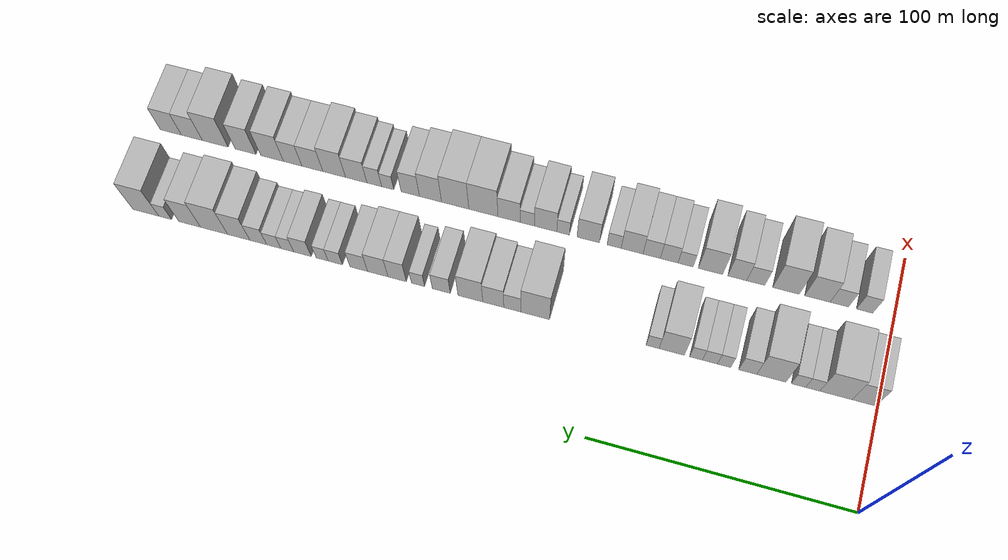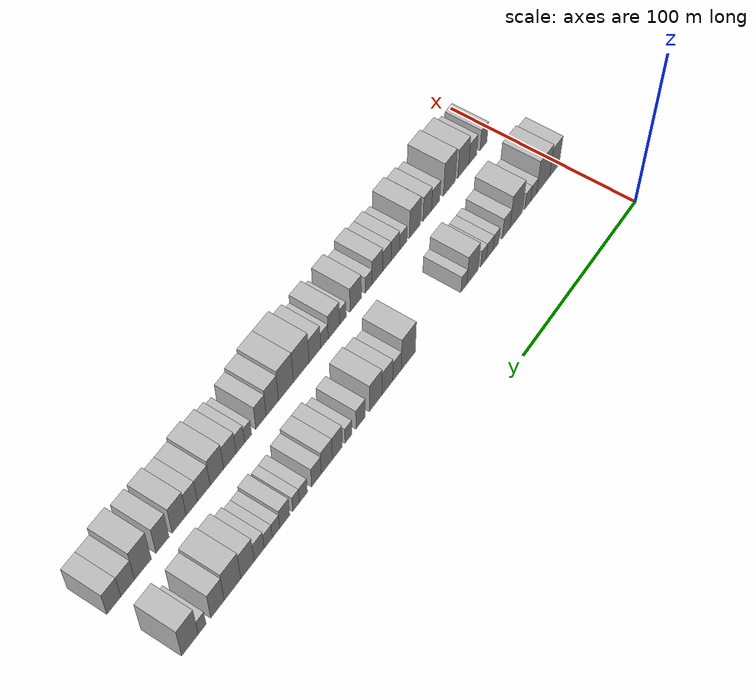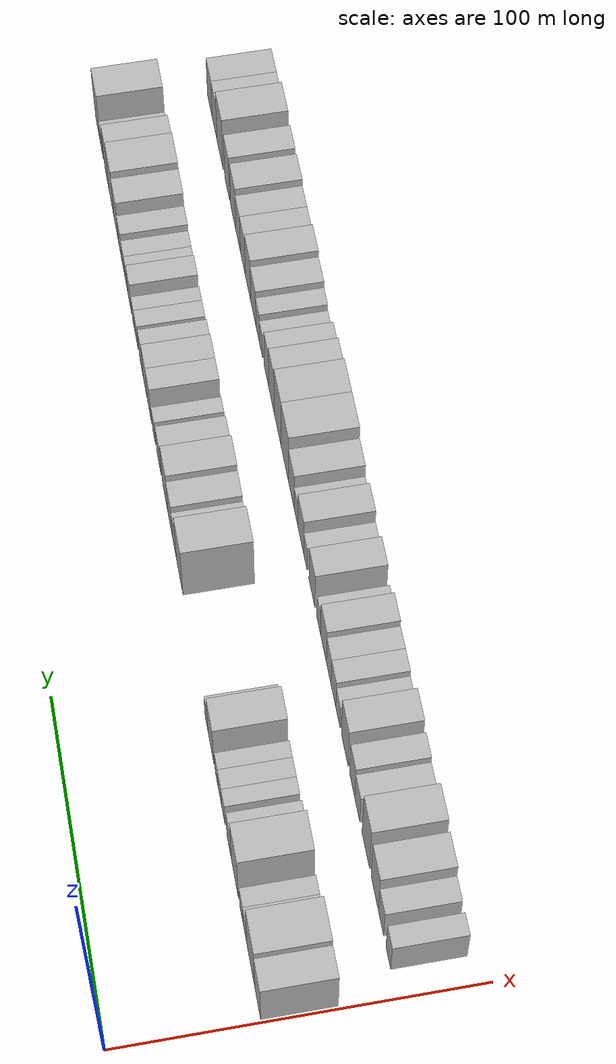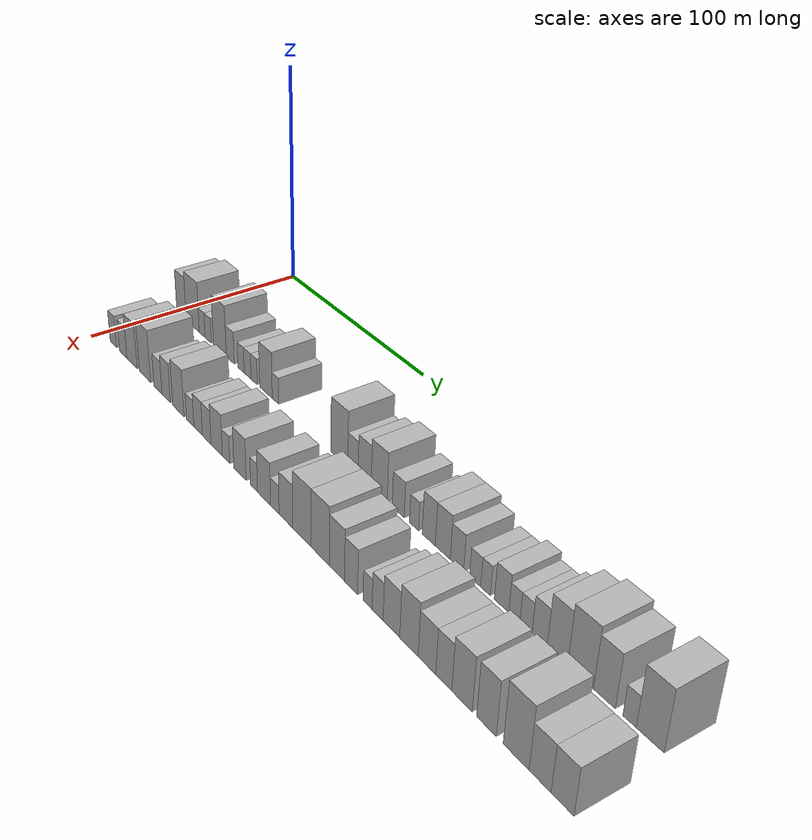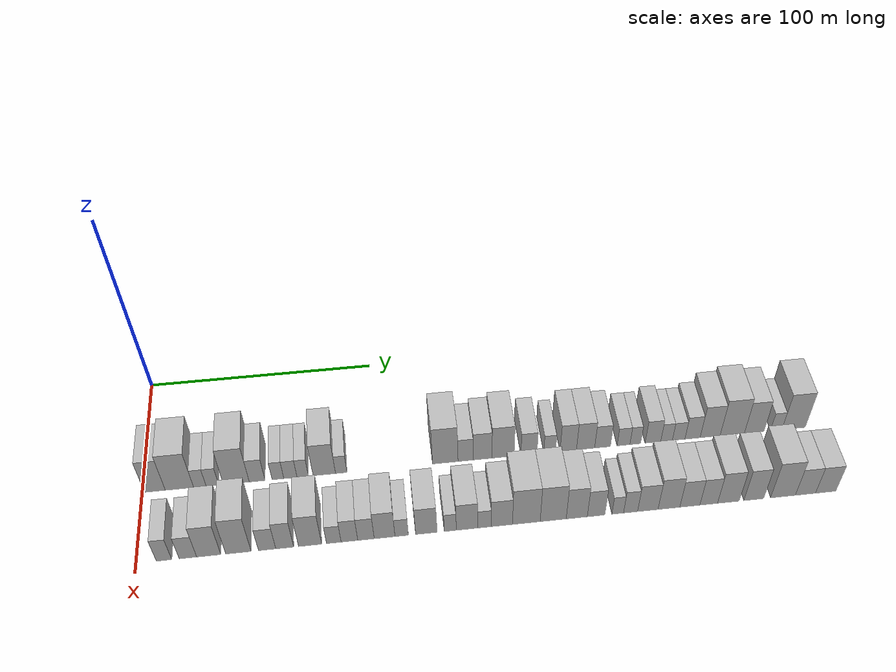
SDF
<sdf version="1.6">
 <world name="default">
  <model name="building_33">
   <static>1</static>
   <pose>50.0000 5.2274 0 0.000000 0.000000 0.000000</pose>
   <link name="link">
    <pose>0 0 10.50 0 0 0</pose>
    <collision name="collision"><geometry><box><size>20.0000 8.7430 21.0000</size></box></geometry></collision>
    <visual name="visual">
     <cast_shadows>0</cast_shadows>
     <geometry><box><size>20.0000 8.7430 21.0000</size></box></geometry>
     <material>
      <script>
       <uri>model://HANNAS_wall/materials/scripts</uri>
       <uri>model://HANNAS_wall/materials/textures</uri>
       <name>vrc/HANNAS_wall</name>
      </script>
     </material>
    </visual>
   </link>
  </model>
  <model name="building_34">
   <static>1</static>
   <pose>50.0000 15.5698 0 0.000000 0.000000 0.000000</pose>
   <link name="link">
    <pose>0 0 12.00 0 0 0</pose>
    <collision name="collision"><geometry><box><size>20.0000 11.9417 24.0000</size></box></geometry></collision>
    <visual name="visual">
     <cast_shadows>0</cast_shadows>
     <geometry><box><size>20.0000 11.9417 24.0000</size></box></geometry>
     <material>
      <script>
       <uri>model://HANNAS_wall/materials/scripts</uri>
       <uri>model://HANNAS_wall/materials/textures</uri>
       <name>vrc/HANNAS_wall</name>
      </script>
     </material>
    </visual>
   </link>
  </model>
  <model name="building_35">
   <static>1</static>
   <pose>50.0000 24.1677 0 0.000000 0.000000 0.000000</pose>
   <link name="link">
    <pose>0 0 6.00 0 0 0</pose>
    <collision name="collision"><geometry><box><size>20.0000 5.2542 12.0000</size></box></geometry></collision>
    <visual name="visual">
     <cast_shadows>0</cast_shadows>
     <geometry><box><size>20.0000 5.2542 12.0000</size></box></geometry>
     <material>
      <script>
       <uri>model://HANNAS_wall/materials/scripts</uri>
       <uri>model://HANNAS_wall/materials/textures</uri>
       <name>vrc/HANNAS_wall</name>
      </script>
     </material>
    </visual>
   </link>
  </model>
  <model name="building_36">
   <static>1</static>
   <pose>50.0000 29.4664 0 0.000000 0.000000 0.000000</pose>
   <link name="link">
    <pose>0 0 6.00 0 0 0</pose>
    <collision name="collision"><geometry><box><size>20.0000 5.3432 12.0000</size></box></geometry></collision>
    <visual name="visual">
     <cast_shadows>0</cast_shadows>
     <geometry><box><size>20.0000 5.3432 12.0000</size></box></geometry>
     <material>
      <script>
       <uri>model://HANNAS_wall/materials/scripts</uri>
       <uri>model://HANNAS_wall/materials/textures</uri>
       <name>vrc/HANNAS_wall</name>
      </script>
     </material>
    </visual>
   </link>
  </model>
  <model name="building_37">
   <static>1</static>
   <pose>50.0000 39.6358 0 0.000000 0.000000 0.000000</pose>
   <link name="link">
    <pose>0 0 12.00 0 0 0</pose>
    <collision name="collision"><geometry><box><size>20.0000 10.9956 24.0000</size></box></geometry></collision>
    <visual name="visual">
     <cast_shadows>0</cast_shadows>
     <geometry><box><size>20.0000 10.9956 24.0000</size></box></geometry>
     <material>
      <script>
       <uri>model://HANNAS_wall/materials/scripts</uri>
       <uri>model://HANNAS_wall/materials/textures</uri>
       <name>vrc/HANNAS_wall</name>
      </script>
     </material>
    </visual>
   </link>
  </model>
  <model name="building_38">
   <static>1</static>
   <pose>50.0000 48.5020 0 0.000000 0.000000 0.000000</pose>
   <link name="link">
    <pose>0 0 7.50 0 0 0</pose>
    <collision name="collision"><geometry><box><size>20.0000 6.7369 15.0000</size></box></geometry></collision>
    <visual name="visual">
     <cast_shadows>0</cast_shadows>
     <geometry><box><size>20.0000 6.7369 15.0000</size></box></geometry>
     <material>
      <script>
       <uri>model://HANNAS_wall/materials/scripts</uri>
       <uri>model://HANNAS_wall/materials/textures</uri>
       <name>vrc/HANNAS_wall</name>
      </script>
     </material>
    </visual>
   </link>
  </model>
  <model name="building_39">
   <static>1</static>
   <pose>50.0000 57.3776 0 0.000000 0.000000 0.000000</pose>
   <link name="link">
    <pose>0 0 6.00 0 0 0</pose>
    <collision name="collision"><geometry><box><size>20.0000 5.0143 12.0000</size></box></geometry></collision>
    <visual name="visual">
     <cast_shadows>0</cast_shadows>
     <geometry><box><size>20.0000 5.0143 12.0000</size></box></geometry>
     <material>
      <script>
       <uri>model://HANNAS_wall/materials/scripts</uri>
       <uri>model://HANNAS_wall/materials/textures</uri>
       <name>vrc/HANNAS_wall</name>
      </script>
     </material>
    </visual>
   </link>
  </model>
  <model name="building_40">
   <static>1</static>
   <pose>50.0000 62.7065 0 0.000000 0.000000 0.000000</pose>
   <link name="link">
    <pose>0 0 6.00 0 0 0</pose>
    <collision name="collision"><geometry><box><size>20.0000 5.6437 12.0000</size></box></geometry></collision>
    <visual name="visual">
     <cast_shadows>0</cast_shadows>
     <geometry><box><size>20.0000 5.6437 12.0000</size></box></geometry>
     <material>
      <script>
       <uri>model://HANNAS_wall/materials/scripts</uri>
       <uri>model://HANNAS_wall/materials/textures</uri>
       <name>vrc/HANNAS_wall</name>
      </script>
     </material>
    </visual>
   </link>
  </model>
  <model name="building_41">
   <static>1</static>
   <pose>50.0000 67.9762 0 0.000000 0.000000 0.000000</pose>
   <link name="link">
    <pose>0 0 6.00 0 0 0</pose>
    <collision name="collision"><geometry><box><size>20.0000 4.8956 12.0000</size></box></geometry></collision>
    <visual name="visual">
     <cast_shadows>0</cast_shadows>
     <geometry><box><size>20.0000 4.8956 12.0000</size></box></geometry>
     <material>
      <script>
       <uri>model://HANNAS_wall/materials/scripts</uri>
       <uri>model://HANNAS_wall/materials/textures</uri>
       <name>vrc/HANNAS_wall</name>
      </script>
     </material>
    </visual>
   </link>
  </model>
  <model name="building_42">
   <static>1</static>
   <pose>50.0000 77.2399 0 0.000000 0.000000 0.000000</pose>
   <link name="link">
    <pose>0 0 10.50 0 0 0</pose>
    <collision name="collision"><geometry><box><size>20.0000 9.6318 21.0000</size></box></geometry></collision>
    <visual name="visual">
     <cast_shadows>0</cast_shadows>
     <geometry><box><size>20.0000 9.6318 21.0000</size></box></geometry>
     <material>
      <script>
       <uri>model://HANNAS_wall/materials/scripts</uri>
       <uri>model://HANNAS_wall/materials/textures</uri>
       <name>vrc/HANNAS_wall</name>
      </script>
     </material>
    </visual>
   </link>
  </model>
  <model name="building_43">
   <static>1</static>
   <pose>50.0000 84.5224 0 0.000000 0.000000 0.000000</pose>
   <link name="link">
    <pose>0 0 6.00 0 0 0</pose>
    <collision name="collision"><geometry><box><size>20.0000 4.9331 12.0000</size></box></geometry></collision>
    <visual name="visual">
     <cast_shadows>0</cast_shadows>
     <geometry><box><size>20.0000 4.9331 12.0000</size></box></geometry>
     <material>
      <script>
       <uri>model://HANNAS_wall/materials/scripts</uri>
       <uri>model://HANNAS_wall/materials/textures</uri>
       <name>vrc/HANNAS_wall</name>
      </script>
     </material>
    </visual>
   </link>
  </model>
  <model name="building_44">
   <static>1</static>
   <pose>50.0000 129.7058 0 0.000000 0.000000 0.000000</pose>
   <link name="link">
    <pose>0 0 12.00 0 0 0</pose>
    <collision name="collision"><geometry><box><size>20.0000 11.1446 24.0000</size></box></geometry></collision>
    <visual name="visual">
     <cast_shadows>0</cast_shadows>
     <geometry><box><size>20.0000 11.1446 24.0000</size></box></geometry>
     <material>
      <script>
       <uri>model://HANNAS_wall/materials/scripts</uri>
       <uri>model://HANNAS_wall/materials/textures</uri>
       <name>vrc/HANNAS_wall</name>
      </script>
     </material>
    </visual>
   </link>
  </model>
  <model name="building_45">
   <static>1</static>
   <pose>50.0000 138.6264 0 0.000000 0.000000 0.000000</pose>
   <link name="link">
    <pose>0 0 7.50 0 0 0</pose>
    <collision name="collision"><geometry><box><size>20.0000 6.6966 15.0000</size></box></geometry></collision>
    <visual name="visual">
     <cast_shadows>0</cast_shadows>
     <geometry><box><size>20.0000 6.6966 15.0000</size></box></geometry>
     <material>
      <script>
       <uri>model://HANNAS_wall/materials/scripts</uri>
       <uri>model://HANNAS_wall/materials/textures</uri>
       <name>vrc/HANNAS_wall</name>
      </script>
     </material>
    </visual>
   </link>
  </model>
  <model name="building_46">
   <static>1</static>
   <pose>50.0000 146.0782 0 0.000000 0.000000 0.000000</pose>
   <link name="link">
    <pose>0 0 9.00 0 0 0</pose>
    <collision name="collision"><geometry><box><size>20.0000 8.2069 18.0000</size></box></geometry></collision>
    <visual name="visual">
     <cast_shadows>0</cast_shadows>
     <geometry><box><size>20.0000 8.2069 18.0000</size></box></geometry>
     <material>
      <script>
       <uri>model://HANNAS_wall/materials/scripts</uri>
       <uri>model://HANNAS_wall/materials/textures</uri>
       <name>vrc/HANNAS_wall</name>
      </script>
     </material>
    </visual>
   </link>
  </model>
  <model name="building_47">
   <static>1</static>
   <pose>50.0000 155.0491 0 0.000000 0.000000 0.000000</pose>
   <link name="link">
    <pose>0 0 10.50 0 0 0</pose>
    <collision name="collision"><geometry><box><size>20.0000 9.7350 21.0000</size></box></geometry></collision>
    <visual name="visual">
     <cast_shadows>0</cast_shadows>
     <geometry><box><size>20.0000 9.7350 21.0000</size></box></geometry>
     <material>
      <script>
       <uri>model://HANNAS_wall/materials/scripts</uri>
       <uri>model://HANNAS_wall/materials/textures</uri>
       <name>vrc/HANNAS_wall</name>
      </script>
     </material>
    </visual>
   </link>
  </model>
  <model name="building_48">
   <static>1</static>
   <pose>50.0000 166.4824 0 0.000000 0.000000 0.000000</pose>
   <link name="link">
    <pose>0 0 7.50 0 0 0</pose>
    <collision name="collision"><geometry><box><size>20.0000 7.1317 15.0000</size></box></geometry></collision>
    <visual name="visual">
     <cast_shadows>0</cast_shadows>
     <geometry><box><size>20.0000 7.1317 15.0000</size></box></geometry>
     <material>
      <script>
       <uri>model://HANNAS_wall/materials/scripts</uri>
       <uri>model://HANNAS_wall/materials/textures</uri>
       <name>vrc/HANNAS_wall</name>
      </script>
     </material>
    </visual>
   </link>
  </model>
  <model name="building_49">
   <static>1</static>
   <pose>50.0000 175.6616 0 0.000000 0.000000 0.000000</pose>
   <link name="link">
    <pose>0 0 6.00 0 0 0</pose>
    <collision name="collision"><geometry><box><size>20.0000 5.2266 12.0000</size></box></geometry></collision>
    <visual name="visual">
     <cast_shadows>0</cast_shadows>
     <geometry><box><size>20.0000 5.2266 12.0000</size></box></geometry>
     <material>
      <script>
       <uri>model://HANNAS_wall/materials/scripts</uri>
       <uri>model://HANNAS_wall/materials/textures</uri>
       <name>vrc/HANNAS_wall</name>
      </script>
     </material>
    </visual>
   </link>
  </model>
  <model name="building_50">
   <static>1</static>
   <pose>50.0000 183.9300 0 0.000000 0.000000 0.000000</pose>
   <link name="link">
    <pose>0 0 9.00 0 0 0</pose>
    <collision name="collision"><geometry><box><size>20.0000 7.3103 18.0000</size></box></geometry></collision>
    <visual name="visual">
     <cast_shadows>0</cast_shadows>
     <geometry><box><size>20.0000 7.3103 18.0000</size></box></geometry>
     <material>
      <script>
       <uri>model://HANNAS_wall/materials/scripts</uri>
       <uri>model://HANNAS_wall/materials/textures</uri>
       <name>vrc/HANNAS_wall</name>
      </script>
     </material>
    </visual>
   </link>
  </model>
  <model name="building_51">
   <static>1</static>
   <pose>50.0000 191.6336 0 0.000000 0.000000 0.000000</pose>
   <link name="link">
    <pose>0 0 9.00 0 0 0</pose>
    <collision name="collision"><geometry><box><size>20.0000 8.0969 18.0000</size></box></geometry></collision>
    <visual name="visual">
     <cast_shadows>0</cast_shadows>
     <geometry><box><size>20.0000 8.0969 18.0000</size></box></geometry>
     <material>
      <script>
       <uri>model://HANNAS_wall/materials/scripts</uri>
       <uri>model://HANNAS_wall/materials/textures</uri>
       <name>vrc/HANNAS_wall</name>
      </script>
     </material>
    </visual>
   </link>
  </model>
  <model name="building_52">
   <static>1</static>
   <pose>50.0000 199.2062 0 0.000000 0.000000 0.000000</pose>
   <link name="link">
    <pose>0 0 7.50 0 0 0</pose>
    <collision name="collision"><geometry><box><size>20.0000 7.0482 15.0000</size></box></geometry></collision>
    <visual name="visual">
     <cast_shadows>0</cast_shadows>
     <geometry><box><size>20.0000 7.0482 15.0000</size></box></geometry>
     <material>
      <script>
       <uri>model://HANNAS_wall/materials/scripts</uri>
       <uri>model://HANNAS_wall/materials/textures</uri>
       <name>vrc/HANNAS_wall</name>
      </script>
     </material>
    </visual>
   </link>
  </model>
  <model name="building_53">
   <static>1</static>
   <pose>50.0000 208.6064 0 0.000000 0.000000 0.000000</pose>
   <link name="link">
    <pose>0 0 6.00 0 0 0</pose>
    <collision name="collision"><geometry><box><size>20.0000 5.7521 12.0000</size></box></geometry></collision>
    <visual name="visual">
     <cast_shadows>0</cast_shadows>
     <geometry><box><size>20.0000 5.7521 12.0000</size></box></geometry>
     <material>
      <script>
       <uri>model://HANNAS_wall/materials/scripts</uri>
       <uri>model://HANNAS_wall/materials/textures</uri>
       <name>vrc/HANNAS_wall</name>
      </script>
     </material>
    </visual>
   </link>
  </model>
  <model name="building_54">
   <static>1</static>
   <pose>50.0000 213.8848 0 0.000000 0.000000 0.000000</pose>
   <link name="link">
    <pose>0 0 6.00 0 0 0</pose>
    <collision name="collision"><geometry><box><size>20.0000 4.8046 12.0000</size></box></geometry></collision>
    <visual name="visual">
     <cast_shadows>0</cast_shadows>
     <geometry><box><size>20.0000 4.8046 12.0000</size></box></geometry>
     <material>
      <script>
       <uri>model://HANNAS_wall/materials/scripts</uri>
       <uri>model://HANNAS_wall/materials/textures</uri>
       <name>vrc/HANNAS_wall</name>
      </script>
     </material>
    </visual>
   </link>
  </model>
  <model name="building_55">
   <static>1</static>
   <pose>50.0000 221.8105 0 0.000000 0.000000 0.000000</pose>
   <link name="link">
    <pose>0 0 7.50 0 0 0</pose>
    <collision name="collision"><geometry><box><size>20.0000 7.0468 15.0000</size></box></geometry></collision>
    <visual name="visual">
     <cast_shadows>0</cast_shadows>
     <geometry><box><size>20.0000 7.0468 15.0000</size></box></geometry>
     <material>
      <script>
       <uri>model://HANNAS_wall/materials/scripts</uri>
       <uri>model://HANNAS_wall/materials/textures</uri>
       <name>vrc/HANNAS_wall</name>
      </script>
     </material>
    </visual>
   </link>
  </model>
  <model name="building_56">
   <static>1</static>
   <pose>50.0000 227.9521 0 0.000000 0.000000 0.000000</pose>
   <link name="link">
    <pose>0 0 6.00 0 0 0</pose>
    <collision name="collision"><geometry><box><size>20.0000 5.2365 12.0000</size></box></geometry></collision>
    <visual name="visual">
     <cast_shadows>0</cast_shadows>
     <geometry><box><size>20.0000 5.2365 12.0000</size></box></geometry>
     <material>
      <script>
       <uri>model://HANNAS_wall/materials/scripts</uri>
       <uri>model://HANNAS_wall/materials/textures</uri>
       <name>vrc/HANNAS_wall</name>
      </script>
     </material>
    </visual>
   </link>
  </model>
  <model name="building_57">
   <static>1</static>
   <pose>50.0000 233.4096 0 0.000000 0.000000 0.000000</pose>
   <link name="link">
    <pose>0 0 6.00 0 0 0</pose>
    <collision name="collision"><geometry><box><size>20.0000 5.6783 12.0000</size></box></geometry></collision>
    <visual name="visual">
     <cast_shadows>0</cast_shadows>
     <geometry><box><size>20.0000 5.6783 12.0000</size></box></geometry>
     <material>
      <script>
       <uri>model://HANNAS_wall/materials/scripts</uri>
       <uri>model://HANNAS_wall/materials/textures</uri>
       <name>vrc/HANNAS_wall</name>
      </script>
     </material>
    </visual>
   </link>
  </model>
  <model name="building_58">
   <static>1</static>
   <pose>50.0000 239.6895 0 0.000000 0.000000 0.000000</pose>
   <link name="link">
    <pose>0 0 7.50 0 0 0</pose>
    <collision name="collision"><geometry><box><size>20.0000 6.8815 15.0000</size></box></geometry></collision>
    <visual name="visual">
     <cast_shadows>0</cast_shadows>
     <geometry><box><size>20.0000 6.8815 15.0000</size></box></geometry>
     <material>
      <script>
       <uri>model://HANNAS_wall/materials/scripts</uri>
       <uri>model://HANNAS_wall/materials/textures</uri>
       <name>vrc/HANNAS_wall</name>
      </script>
     </material>
    </visual>
   </link>
  </model>
  <model name="building_59">
   <static>1</static>
   <pose>50.0000 247.6630 0 0.000000 0.000000 0.000000</pose>
   <link name="link">
    <pose>0 0 10.50 0 0 0</pose>
    <collision name="collision"><geometry><box><size>20.0000 9.0654 21.0000</size></box></geometry></collision>
    <visual name="visual">
     <cast_shadows>0</cast_shadows>
     <geometry><box><size>20.0000 9.0654 21.0000</size></box></geometry>
     <material>
      <script>
       <uri>model://HANNAS_wall/materials/scripts</uri>
       <uri>model://HANNAS_wall/materials/textures</uri>
       <name>vrc/HANNAS_wall</name>
      </script>
     </material>
    </visual>
   </link>
  </model>
  <model name="building_60">
   <static>1</static>
   <pose>50.0000 257.7361 0 0.000000 0.000000 0.000000</pose>
   <link name="link">
    <pose>0 0 12.00 0 0 0</pose>
    <collision name="collision"><geometry><box><size>20.0000 11.0808 24.0000</size></box></geometry></collision>
    <visual name="visual">
     <cast_shadows>0</cast_shadows>
     <geometry><box><size>20.0000 11.0808 24.0000</size></box></geometry>
     <material>
      <script>
       <uri>model://HANNAS_wall/materials/scripts</uri>
       <uri>model://HANNAS_wall/materials/textures</uri>
       <name>vrc/HANNAS_wall</name>
      </script>
     </material>
    </visual>
   </link>
  </model>
  <model name="building_61">
   <static>1</static>
   <pose>50.0000 267.7420 0 0.000000 0.000000 0.000000</pose>
   <link name="link">
    <pose>0 0 10.50 0 0 0</pose>
    <collision name="collision"><geometry><box><size>20.0000 8.9310 21.0000</size></box></geometry></collision>
    <visual name="visual">
     <cast_shadows>0</cast_shadows>
     <geometry><box><size>20.0000 8.9310 21.0000</size></box></geometry>
     <material>
      <script>
       <uri>model://HANNAS_wall/materials/scripts</uri>
       <uri>model://HANNAS_wall/materials/textures</uri>
       <name>vrc/HANNAS_wall</name>
      </script>
     </material>
    </visual>
   </link>
  </model>
  <model name="building_62">
   <static>1</static>
   <pose>50.0000 277.8207 0 0.000000 0.000000 0.000000</pose>
   <link name="link">
    <pose>0 0 6.00 0 0 0</pose>
    <collision name="collision"><geometry><box><size>20.0000 5.2265 12.0000</size></box></geometry></collision>
    <visual name="visual">
     <cast_shadows>0</cast_shadows>
     <geometry><box><size>20.0000 5.2265 12.0000</size></box></geometry>
     <material>
      <script>
       <uri>model://HANNAS_wall/materials/scripts</uri>
       <uri>model://HANNAS_wall/materials/textures</uri>
       <name>vrc/HANNAS_wall</name>
      </script>
     </material>
    </visual>
   </link>
  </model>
  <model name="building_63">
   <static>1</static>
   <pose>50.0000 285.7906 0 0.000000 0.000000 0.000000</pose>
   <link name="link">
    <pose>0 0 12.00 0 0 0</pose>
    <collision name="collision"><geometry><box><size>20.0000 10.7135 24.0000</size></box></geometry></collision>
    <visual name="visual">
     <cast_shadows>0</cast_shadows>
     <geometry><box><size>20.0000 10.7135 24.0000</size></box></geometry>
     <material>
      <script>
       <uri>model://HANNAS_wall/materials/scripts</uri>
       <uri>model://HANNAS_wall/materials/textures</uri>
       <name>vrc/HANNAS_wall</name>
      </script>
     </material>
    </visual>
   </link>
  </model>
  <model name="building_94">
   <static>1</static>
   <pose>85.0000 11.1298 0 0.000000 0.000000 0.000000</pose>
   <link name="link">
    <pose>0 0 7.50 0 0 0</pose>
    <collision name="collision"><geometry><box><size>20.0000 6.1815 15.0000</size></box></geometry></collision>
    <visual name="visual">
     <cast_shadows>0</cast_shadows>
     <geometry><box><size>20.0000 6.1815 15.0000</size></box></geometry>
     <material>
      <script>
       <uri>model://HANNAS_wall/materials/scripts</uri>
       <uri>model://HANNAS_wall/materials/textures</uri>
       <name>vrc/HANNAS_wall</name>
      </script>
     </material>
    </visual>
   </link>
  </model>
  <model name="building_95">
   <static>1</static>
   <pose>85.0000 20.7337 0 0.000000 0.000000 0.000000</pose>
   <link name="link">
    <pose>0 0 7.50 0 0 0</pose>
    <collision name="collision"><geometry><box><size>20.0000 7.0261 15.0000</size></box></geometry></collision>
    <visual name="visual">
     <cast_shadows>0</cast_shadows>
     <geometry><box><size>20.0000 7.0261 15.0000</size></box></geometry>
     <material>
      <script>
       <uri>model://HANNAS_wall/materials/scripts</uri>
       <uri>model://HANNAS_wall/materials/textures</uri>
       <name>vrc/HANNAS_wall</name>
      </script>
     </material>
    </visual>
   </link>
  </model>
  <model name="building_96">
   <static>1</static>
   <pose>85.0000 29.1197 0 0.000000 0.000000 0.000000</pose>
   <link name="link">
    <pose>0 0 10.50 0 0 0</pose>
    <collision name="collision"><geometry><box><size>20.0000 9.7458 21.0000</size></box></geometry></collision>
    <visual name="visual">
     <cast_shadows>0</cast_shadows>
     <geometry><box><size>20.0000 9.7458 21.0000</size></box></geometry>
     <material>
      <script>
       <uri>model://HANNAS_wall/materials/scripts</uri>
       <uri>model://HANNAS_wall/materials/textures</uri>
       <name>vrc/HANNAS_wall</name>
      </script>
     </material>
    </visual>
   </link>
  </model>
  <model name="building_97">
   <static>1</static>
   <pose>85.0000 41.1319 0 0.000000 0.000000 0.000000</pose>
   <link name="link">
    <pose>0 0 12.00 0 0 0</pose>
    <collision name="collision"><geometry><box><size>20.0000 10.2788 24.0000</size></box></geometry></collision>
    <visual name="visual">
     <cast_shadows>0</cast_shadows>
     <geometry><box><size>20.0000 10.2788 24.0000</size></box></geometry>
     <material>
      <script>
       <uri>model://HANNAS_wall/materials/scripts</uri>
       <uri>model://HANNAS_wall/materials/textures</uri>
       <name>vrc/HANNAS_wall</name>
      </script>
     </material>
    </visual>
   </link>
  </model>
  <model name="building_98">
   <static>1</static>
   <pose>85.0000 52.7914 0 0.000000 0.000000 0.000000</pose>
   <link name="link">
    <pose>0 0 7.50 0 0 0</pose>
    <collision name="collision"><geometry><box><size>20.0000 7.0401 15.0000</size></box></geometry></collision>
    <visual name="visual">
     <cast_shadows>0</cast_shadows>
     <geometry><box><size>20.0000 7.0401 15.0000</size></box></geometry>
     <material>
      <script>
       <uri>model://HANNAS_wall/materials/scripts</uri>
       <uri>model://HANNAS_wall/materials/textures</uri>
       <name>vrc/HANNAS_wall</name>
      </script>
     </material>
    </visual>
   </link>
  </model>
  <model name="building_99">
   <static>1</static>
   <pose>85.0000 59.9547 0 0.000000 0.000000 0.000000</pose>
   <link name="link">
    <pose>0 0 9.00 0 0 0</pose>
    <collision name="collision"><geometry><box><size>20.0000 7.2866 18.0000</size></box></geometry></collision>
    <visual name="visual">
     <cast_shadows>0</cast_shadows>
     <geometry><box><size>20.0000 7.2866 18.0000</size></box></geometry>
     <material>
      <script>
       <uri>model://HANNAS_wall/materials/scripts</uri>
       <uri>model://HANNAS_wall/materials/textures</uri>
       <name>vrc/HANNAS_wall</name>
      </script>
     </material>
    </visual>
   </link>
  </model>
  <model name="building_100">
   <static>1</static>
   <pose>85.0000 70.3250 0 0.000000 0.000000 0.000000</pose>
   <link name="link">
    <pose>0 0 10.50 0 0 0</pose>
    <collision name="collision"><geometry><box><size>20.0000 9.4542 21.0000</size></box></geometry></collision>
    <visual name="visual">
     <cast_shadows>0</cast_shadows>
     <geometry><box><size>20.0000 9.4542 21.0000</size></box></geometry>
     <material>
      <script>
       <uri>model://HANNAS_wall/materials/scripts</uri>
       <uri>model://HANNAS_wall/materials/textures</uri>
       <name>vrc/HANNAS_wall</name>
      </script>
     </material>
    </visual>
   </link>
  </model>
  <model name="building_101">
   <static>1</static>
   <pose>85.0000 80.0443 0 0.000000 0.000000 0.000000</pose>
   <link name="link">
    <pose>0 0 6.00 0 0 0</pose>
    <collision name="collision"><geometry><box><size>20.0000 5.9843 12.0000</size></box></geometry></collision>
    <visual name="visual">
     <cast_shadows>0</cast_shadows>
     <geometry><box><size>20.0000 5.9843 12.0000</size></box></geometry>
     <material>
      <script>
       <uri>model://HANNAS_wall/materials/scripts</uri>
       <uri>model://HANNAS_wall/materials/textures</uri>
       <name>vrc/HANNAS_wall</name>
      </script>
     </material>
    </visual>
   </link>
  </model>
  <model name="building_102">
   <static>1</static>
   <pose>85.0000 86.4543 0 0.000000 0.000000 0.000000</pose>
   <link name="link">
    <pose>0 0 7.50 0 0 0</pose>
    <collision name="collision"><geometry><box><size>20.0000 6.8357 15.0000</size></box></geometry></collision>
    <visual name="visual">
     <cast_shadows>0</cast_shadows>
     <geometry><box><size>20.0000 6.8357 15.0000</size></box></geometry>
     <material>
      <script>
       <uri>model://HANNAS_wall/materials/scripts</uri>
       <uri>model://HANNAS_wall/materials/textures</uri>
       <name>vrc/HANNAS_wall</name>
      </script>
     </material>
    </visual>
   </link>
  </model>
  <model name="building_103">
   <static>1</static>
   <pose>85.0000 93.2700 0 0.000000 0.000000 0.000000</pose>
   <link name="link">
    <pose>0 0 7.50 0 0 0</pose>
    <collision name="collision"><geometry><box><size>20.0000 6.7958 15.0000</size></box></geometry></collision>
    <visual name="visual">
     <cast_shadows>0</cast_shadows>
     <geometry><box><size>20.0000 6.7958 15.0000</size></box></geometry>
     <material>
      <script>
       <uri>model://HANNAS_wall/materials/scripts</uri>
       <uri>model://HANNAS_wall/materials/textures</uri>
       <name>vrc/HANNAS_wall</name>
      </script>
     </material>
    </visual>
   </link>
  </model>
  <model name="building_104">
   <static>1</static>
   <pose>85.0000 100.9699 0 0.000000 0.000000 0.000000</pose>
   <link name="link">
    <pose>0 0 9.00 0 0 0</pose>
    <collision name="collision"><geometry><box><size>20.0000 8.6040 18.0000</size></box></geometry></collision>
    <visual name="visual">
     <cast_shadows>0</cast_shadows>
     <geometry><box><size>20.0000 8.6040 18.0000</size></box></geometry>
     <material>
      <script>
       <uri>model://HANNAS_wall/materials/scripts</uri>
       <uri>model://HANNAS_wall/materials/textures</uri>
       <name>vrc/HANNAS_wall</name>
      </script>
     </material>
    </visual>
   </link>
  </model>
  <model name="building_105">
   <static>1</static>
   <pose>85.0000 108.0485 0 0.000000 0.000000 0.000000</pose>
   <link name="link">
    <pose>0 0 6.00 0 0 0</pose>
    <collision name="collision"><geometry><box><size>20.0000 5.5532 12.0000</size></box></geometry></collision>
    <visual name="visual">
     <cast_shadows>0</cast_shadows>
     <geometry><box><size>20.0000 5.5532 12.0000</size></box></geometry>
     <material>
      <script>
       <uri>model://HANNAS_wall/materials/scripts</uri>
       <uri>model://HANNAS_wall/materials/textures</uri>
       <name>vrc/HANNAS_wall</name>
      </script>
     </material>
    </visual>
   </link>
  </model>
  <model name="building_106">
   <static>1</static>
   <pose>85.0000 118.2897 0 0.000000 0.000000 0.000000</pose>
   <link name="link">
    <pose>0 0 9.00 0 0 0</pose>
    <collision name="collision"><geometry><box><size>20.0000 8.9292 18.0000</size></box></geometry></collision>
    <visual name="visual">
     <cast_shadows>0</cast_shadows>
     <geometry><box><size>20.0000 8.9292 18.0000</size></box></geometry>
     <material>
      <script>
       <uri>model://HANNAS_wall/materials/scripts</uri>
       <uri>model://HANNAS_wall/materials/textures</uri>
       <name>vrc/HANNAS_wall</name>
      </script>
     </material>
    </visual>
   </link>
  </model>
  <model name="building_107">
   <static>1</static>
   <pose>85.0000 128.2579 0 0.000000 0.000000 0.000000</pose>
   <link name="link">
    <pose>0 0 6.00 0 0 0</pose>
    <collision name="collision"><geometry><box><size>20.0000 5.0071 12.0000</size></box></geometry></collision>
    <visual name="visual">
     <cast_shadows>0</cast_shadows>
     <geometry><box><size>20.0000 5.0071 12.0000</size></box></geometry>
     <material>
      <script>
       <uri>model://HANNAS_wall/materials/scripts</uri>
       <uri>model://HANNAS_wall/materials/textures</uri>
       <name>vrc/HANNAS_wall</name>
      </script>
     </material>
    </visual>
   </link>
  </model>
  <model name="building_108">
   <static>1</static>
   <pose>85.0000 135.2298 0 0.000000 0.000000 0.000000</pose>
   <link name="link">
    <pose>0 0 9.00 0 0 0</pose>
    <collision name="collision"><geometry><box><size>20.0000 8.9366 18.0000</size></box></geometry></collision>
    <visual name="visual">
     <cast_shadows>0</cast_shadows>
     <geometry><box><size>20.0000 8.9366 18.0000</size></box></geometry>
     <material>
      <script>
       <uri>model://HANNAS_wall/materials/scripts</uri>
       <uri>model://HANNAS_wall/materials/textures</uri>
       <name>vrc/HANNAS_wall</name>
      </script>
     </material>
    </visual>
   </link>
  </model>
  <model name="building_109">
   <static>1</static>
   <pose>85.0000 142.5527 0 0.000000 0.000000 0.000000</pose>
   <link name="link">
    <pose>0 0 6.00 0 0 0</pose>
    <collision name="collision"><geometry><box><size>20.0000 5.7092 12.0000</size></box></geometry></collision>
    <visual name="visual">
     <cast_shadows>0</cast_shadows>
     <geometry><box><size>20.0000 5.7092 12.0000</size></box></geometry>
     <material>
      <script>
       <uri>model://HANNAS_wall/materials/scripts</uri>
       <uri>model://HANNAS_wall/materials/textures</uri>
       <name>vrc/HANNAS_wall</name>
      </script>
     </material>
    </visual>
   </link>
  </model>
  <model name="building_110">
   <static>1</static>
   <pose>85.0000 149.8486 0 0.000000 0.000000 0.000000</pose>
   <link name="link">
    <pose>0 0 9.00 0 0 0</pose>
    <collision name="collision"><geometry><box><size>20.0000 8.8825 18.0000</size></box></geometry></collision>
    <visual name="visual">
     <cast_shadows>0</cast_shadows>
     <geometry><box><size>20.0000 8.8825 18.0000</size></box></geometry>
     <material>
      <script>
       <uri>model://HANNAS_wall/materials/scripts</uri>
       <uri>model://HANNAS_wall/materials/textures</uri>
       <name>vrc/HANNAS_wall</name>
      </script>
     </material>
    </visual>
   </link>
  </model>
  <model name="building_111">
   <static>1</static>
   <pose>85.0000 160.1417 0 0.000000 0.000000 0.000000</pose>
   <link name="link">
    <pose>0 0 12.00 0 0 0</pose>
    <collision name="collision"><geometry><box><size>20.0000 11.7038 24.0000</size></box></geometry></collision>
    <visual name="visual">
     <cast_shadows>0</cast_shadows>
     <geometry><box><size>20.0000 11.7038 24.0000</size></box></geometry>
     <material>
      <script>
       <uri>model://HANNAS_wall/materials/scripts</uri>
       <uri>model://HANNAS_wall/materials/textures</uri>
       <name>vrc/HANNAS_wall</name>
      </script>
     </material>
    </visual>
   </link>
  </model>
  <model name="building_112">
   <static>1</static>
   <pose>85.0000 171.5057 0 0.000000 0.000000 0.000000</pose>
   <link name="link">
    <pose>0 0 12.00 0 0 0</pose>
    <collision name="collision"><geometry><box><size>20.0000 11.0243 24.0000</size></box></geometry></collision>
    <visual name="visual">
     <cast_shadows>0</cast_shadows>
     <geometry><box><size>20.0000 11.0243 24.0000</size></box></geometry>
     <material>
      <script>
       <uri>model://HANNAS_wall/materials/scripts</uri>
       <uri>model://HANNAS_wall/materials/textures</uri>
       <name>vrc/HANNAS_wall</name>
      </script>
     </material>
    </visual>
   </link>
  </model>
  <model name="building_113">
   <static>1</static>
   <pose>85.0000 181.4873 0 0.000000 0.000000 0.000000</pose>
   <link name="link">
    <pose>0 0 10.50 0 0 0</pose>
    <collision name="collision"><geometry><box><size>20.0000 8.9388 21.0000</size></box></geometry></collision>
    <visual name="visual">
     <cast_shadows>0</cast_shadows>
     <geometry><box><size>20.0000 8.9388 21.0000</size></box></geometry>
     <material>
      <script>
       <uri>model://HANNAS_wall/materials/scripts</uri>
       <uri>model://HANNAS_wall/materials/textures</uri>
       <name>vrc/HANNAS_wall</name>
      </script>
     </material>
    </visual>
   </link>
  </model>
  <model name="building_114">
   <static>1</static>
   <pose>85.0000 189.7023 0 0.000000 0.000000 0.000000</pose>
   <link name="link">
    <pose>0 0 9.00 0 0 0</pose>
    <collision name="collision"><geometry><box><size>20.0000 7.4912 18.0000</size></box></geometry></collision>
    <visual name="visual">
     <cast_shadows>0</cast_shadows>
     <geometry><box><size>20.0000 7.4912 18.0000</size></box></geometry>
     <material>
      <script>
       <uri>model://HANNAS_wall/materials/scripts</uri>
       <uri>model://HANNAS_wall/materials/textures</uri>
       <name>vrc/HANNAS_wall</name>
      </script>
     </material>
    </visual>
   </link>
  </model>
  <model name="building_115">
   <static>1</static>
   <pose>85.0000 198.9327 0 0.000000 0.000000 0.000000</pose>
   <link name="link">
    <pose>0 0 6.00 0 0 0</pose>
    <collision name="collision"><geometry><box><size>20.0000 4.9696 12.0000</size></box></geometry></collision>
    <visual name="visual">
     <cast_shadows>0</cast_shadows>
     <geometry><box><size>20.0000 4.9696 12.0000</size></box></geometry>
     <material>
      <script>
       <uri>model://HANNAS_wall/materials/scripts</uri>
       <uri>model://HANNAS_wall/materials/textures</uri>
       <name>vrc/HANNAS_wall</name>
      </script>
     </material>
    </visual>
   </link>
  </model>
  <model name="building_116">
   <static>1</static>
   <pose>85.0000 204.4200 0 0.000000 0.000000 0.000000</pose>
   <link name="link">
    <pose>0 0 7.50 0 0 0</pose>
    <collision name="collision"><geometry><box><size>20.0000 6.0049 15.0000</size></box></geometry></collision>
    <visual name="visual">
     <cast_shadows>0</cast_shadows>
     <geometry><box><size>20.0000 6.0049 15.0000</size></box></geometry>
     <material>
      <script>
       <uri>model://HANNAS_wall/materials/scripts</uri>
       <uri>model://HANNAS_wall/materials/textures</uri>
       <name>vrc/HANNAS_wall</name>
      </script>
     </material>
    </visual>
   </link>
  </model>
  <model name="building_117">
   <static>1</static>
   <pose>85.0000 211.8101 0 0.000000 0.000000 0.000000</pose>
   <link name="link">
    <pose>0 0 9.00 0 0 0</pose>
    <collision name="collision"><geometry><box><size>20.0000 8.7754 18.0000</size></box></geometry></collision>
    <visual name="visual">
     <cast_shadows>0</cast_shadows>
     <geometry><box><size>20.0000 8.7754 18.0000</size></box></geometry>
     <material>
      <script>
       <uri>model://HANNAS_wall/materials/scripts</uri>
       <uri>model://HANNAS_wall/materials/textures</uri>
       <name>vrc/HANNAS_wall</name>
      </script>
     </material>
    </visual>
   </link>
  </model>
  <model name="building_118">
   <static>1</static>
   <pose>85.0000 220.8830 0 0.000000 0.000000 0.000000</pose>
   <link name="link">
    <pose>0 0 10.50 0 0 0</pose>
    <collision name="collision"><geometry><box><size>20.0000 9.3704 21.0000</size></box></geometry></collision>
    <visual name="visual">
     <cast_shadows>0</cast_shadows>
     <geometry><box><size>20.0000 9.3704 21.0000</size></box></geometry>
     <material>
      <script>
       <uri>model://HANNAS_wall/materials/scripts</uri>
       <uri>model://HANNAS_wall/materials/textures</uri>
       <name>vrc/HANNAS_wall</name>
      </script>
     </material>
    </visual>
   </link>
  </model>
  <model name="building_119">
   <static>1</static>
   <pose>85.0000 229.9012 0 0.000000 0.000000 0.000000</pose>
   <link name="link">
    <pose>0 0 9.00 0 0 0</pose>
    <collision name="collision"><geometry><box><size>20.0000 8.6658 18.0000</size></box></geometry></collision>
    <visual name="visual">
     <cast_shadows>0</cast_shadows>
     <geometry><box><size>20.0000 8.6658 18.0000</size></box></geometry>
     <material>
      <script>
       <uri>model://HANNAS_wall/materials/scripts</uri>
       <uri>model://HANNAS_wall/materials/textures</uri>
       <name>vrc/HANNAS_wall</name>
      </script>
     </material>
    </visual>
   </link>
  </model>
  <model name="building_120">
   <static>1</static>
   <pose>85.0000 238.0571 0 0.000000 0.000000 0.000000</pose>
   <link name="link">
    <pose>0 0 9.00 0 0 0</pose>
    <collision name="collision"><geometry><box><size>20.0000 7.6460 18.0000</size></box></geometry></collision>
    <visual name="visual">
     <cast_shadows>0</cast_shadows>
     <geometry><box><size>20.0000 7.6460 18.0000</size></box></geometry>
     <material>
      <script>
       <uri>model://HANNAS_wall/materials/scripts</uri>
       <uri>model://HANNAS_wall/materials/textures</uri>
       <name>vrc/HANNAS_wall</name>
      </script>
     </material>
    </visual>
   </link>
  </model>
  <model name="building_121">
   <static>1</static>
   <pose>85.0000 246.6007 0 0.000000 0.000000 0.000000</pose>
   <link name="link">
    <pose>0 0 10.50 0 0 0</pose>
    <collision name="collision"><geometry><box><size>20.0000 9.4413 21.0000</size></box></geometry></collision>
    <visual name="visual">
     <cast_shadows>0</cast_shadows>
     <geometry><box><size>20.0000 9.4413 21.0000</size></box></geometry>
     <material>
      <script>
       <uri>model://HANNAS_wall/materials/scripts</uri>
       <uri>model://HANNAS_wall/materials/textures</uri>
       <name>vrc/HANNAS_wall</name>
      </script>
     </material>
    </visual>
   </link>
  </model>
  <model name="building_122">
   <static>1</static>
   <pose>85.0000 257.6522 0 0.000000 0.000000 0.000000</pose>
   <link name="link">
    <pose>0 0 10.50 0 0 0</pose>
    <collision name="collision"><geometry><box><size>20.0000 8.6618 21.0000</size></box></geometry></collision>
    <visual name="visual">
     <cast_shadows>0</cast_shadows>
     <geometry><box><size>20.0000 8.6618 21.0000</size></box></geometry>
     <material>
      <script>
       <uri>model://HANNAS_wall/materials/scripts</uri>
       <uri>model://HANNAS_wall/materials/textures</uri>
       <name>vrc/HANNAS_wall</name>
      </script>
     </material>
    </visual>
   </link>
  </model>
  <model name="building_123">
   <static>1</static>
   <pose>85.0000 270.4087 0 0.000000 0.000000 0.000000</pose>
   <link name="link">
    <pose>0 0 12.00 0 0 0</pose>
    <collision name="collision"><geometry><box><size>20.0000 10.8512 24.0000</size></box></geometry></collision>
    <visual name="visual">
     <cast_shadows>0</cast_shadows>
     <geometry><box><size>20.0000 10.8512 24.0000</size></box></geometry>
     <material>
      <script>
       <uri>model://HANNAS_wall/materials/scripts</uri>
       <uri>model://HANNAS_wall/materials/textures</uri>
       <name>vrc/HANNAS_wall</name>
      </script>
     </material>
    </visual>
   </link>
  </model>
  <model name="building_124">
   <static>1</static>
   <pose>85.0000 280.2549 0 0.000000 0.000000 0.000000</pose>
   <link name="link">
    <pose>0 0 9.00 0 0 0</pose>
    <collision name="collision"><geometry><box><size>20.0000 8.8411 18.0000</size></box></geometry></collision>
    <visual name="visual">
     <cast_shadows>0</cast_shadows>
     <geometry><box><size>20.0000 8.8411 18.0000</size></box></geometry>
     <material>
      <script>
       <uri>model://HANNAS_wall/materials/scripts</uri>
       <uri>model://HANNAS_wall/materials/textures</uri>
       <name>vrc/HANNAS_wall</name>
      </script>
     </material>
    </visual>
   </link>
  </model>
  <model name="building_125">
   <static>1</static>
   <pose>85.0000 289.1459 0 0.000000 0.000000 0.000000</pose>
   <link name="link">
    <pose>0 0 9.00 0 0 0</pose>
    <collision name="collision"><geometry><box><size>20.0000 8.9410 18.0000</size></box></geometry></collision>
    <visual name="visual">
     <cast_shadows>0</cast_shadows>
     <geometry><box><size>20.0000 8.9410 18.0000</size></box></geometry>
     <material>
      <script>
       <uri>model://HANNAS_wall/materials/scripts</uri>
       <uri>model://HANNAS_wall/materials/textures</uri>
       <name>vrc/HANNAS_wall</name>
      </script>
     </material>
    </visual>
   </link>
  </model>
 </world>
</sdf>
